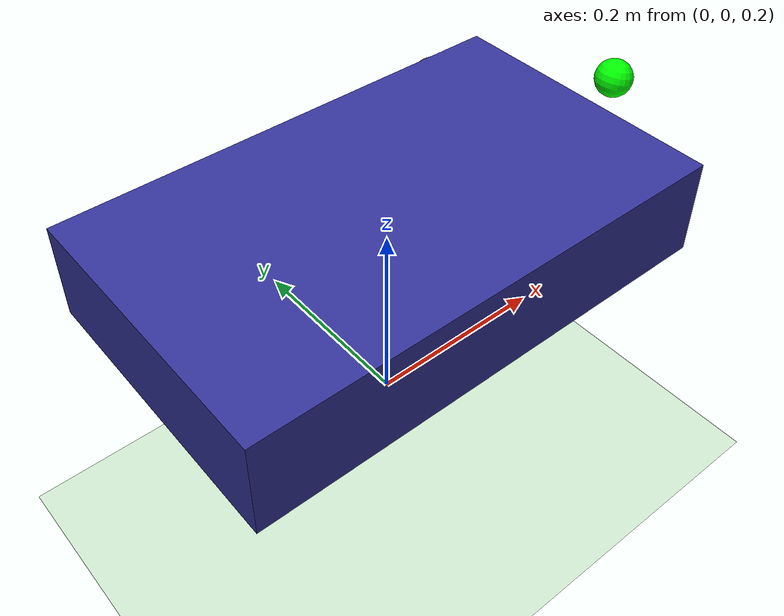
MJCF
<mujoco model="quadruped_vision">
    <compiler angle="degree" coordinate="local" inertiafromgeom="true"/>
    <option timestep="0.002" gravity="0 0 -9.81" iterations="50" tolerance="1e-4"/>

    <default>
        <joint damping="0.5" stiffness="1.0" limited="true"/>
        <geom friction="1 0.5 0.5" density="1000"/>
    </default>

    <worldbody>
        <light pos="0 0 3" dir="0 0 -1" directional="true"/>
        <!-- Fluctuating floor layout setup -->
        <geom name="floor" type="plane" size="20 20 0.1" rgba="0.8 0.9 0.8 1"/>

        <body name="torso" pos="0 0 0.4">
            <joint type="free"/>
            <geom type="box" size="0.25 0.15 0.05" rgba="0.2 0.2 0.6 1"/>

            <!-- Spatial depth sensor attachment -->
            <site name="depth_camera" pos="0.3 0 0.05" euler="0 15 0" size="0.02" rgba="0 1 0 1"/>

            <!-- Simplified Quadruped Legs -->
            <!-- Front Left -->
            <body name="fl_hip" pos="0.2 0.15 0">
                <joint name="fl_hip_joint" type="hinge" axis="1 0 0" range="-30 30"/>
                <geom type="capsule" size="0.04" fromto="0 0 0 0 0 -0.2"/>
            </body>
            <!-- Additional legs omitted for brevity, full dynamic modeling requires 12 DOF -->
        </body>
    </worldbody>

    <!-- Synthetic Spatial Depth Field Sensors -->
    <sensor>
        <depth name="vision_sensor" site="depth_camera"/>
    </sensor>
</mujoco>
